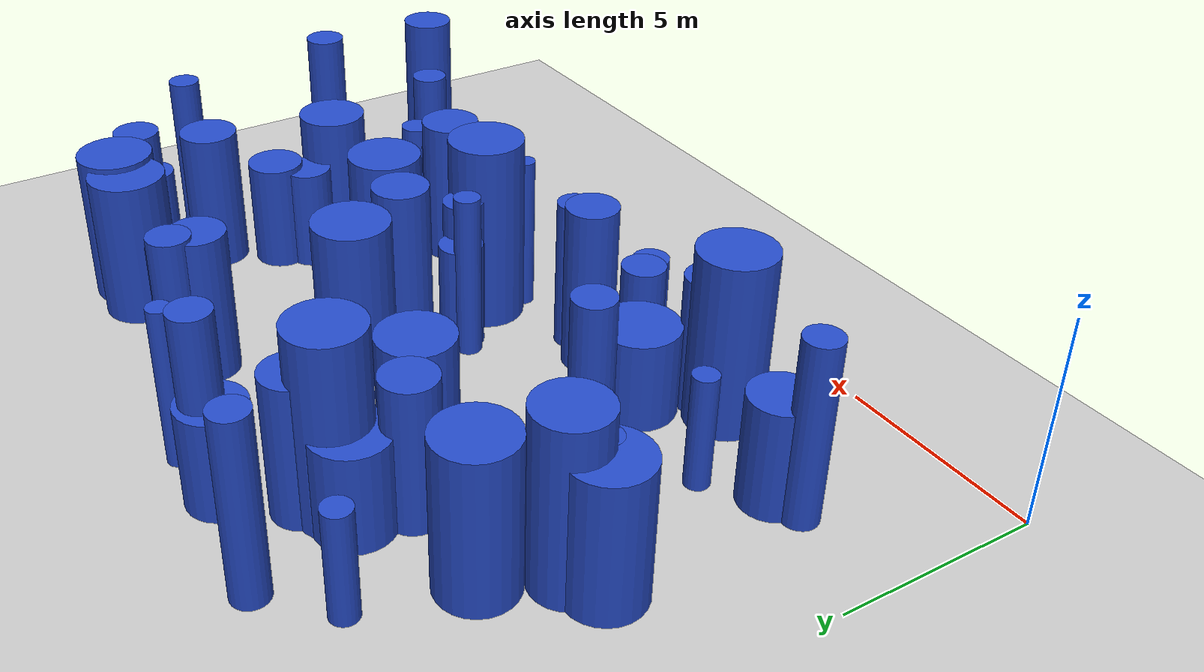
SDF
<sdf version="1.6">
 <world name="default">
  <model name="ground_plane">
   <static>1</static>
   <link name="link">
    <collision name="collision">
     <geometry><plane><normal>0 0 1</normal><size>100 100</size></plane></geometry>
     <surface><friction><ode><mu>100</mu><mu2>50</mu2></ode></friction></surface>
    </collision>
    <visual name="visual">
     <cast_shadows>0</cast_shadows>
     <geometry><plane><normal>0 0 1</normal><size>100 100</size></plane></geometry>
     <material>
      <script><uri>file://media/materials/scripts/gazebo.material</uri><name>Gazebo/Grey</name></script>
     </material>
    </visual>
   </link>
  </model>
  <model name="14">
   <static>0</static>
   <link name="link">
    <inertial>
     <mass>2</mass>
     <inertia><ixx>1.64079</ixx><ixy>0</ixy><ixz>0</ixz><iyy>1.64079</iyy><iyz>0</iyz><izz>0.150374</izz></inertia>
    </inertial>
    <collision name="collision">
     <geometry><cylinder><length>3.0649</length><radius>0.38778</radius></cylinder></geometry>
     <surface><contact><collide_without_contact>1</collide_without_contact></contact></surface>
    </collision>
    <visual name="visual">
     <geometry><cylinder><length>3.0649</length><radius>0.38778</radius></cylinder></geometry>
     <material>
      <script><uri>file://media/materials/scripts/gazebo.material</uri><name>Gazebo/Blue</name></script>
     </material>
    </visual>
    <gravity>0</gravity>
   </link>
   <pose>17.3165 4.85681 1.53245 0 -0 0</pose>
  </model>
  <model name="24">
   <static>0</static>
   <link name="link">
    <inertial>
     <mass>2</mass>
     <inertia><ixx>1.33099</ixx><ixy>0</ixy><ixz>0</ixz><iyy>1.33099</iyy><iyz>0</iyz><izz>0.36083</izz></inertia>
    </inertial>
    <collision name="collision">
     <geometry><cylinder><length>2.62744</length><radius>0.600691</radius></cylinder></geometry>
     <surface><contact><collide_without_contact>1</collide_without_contact></contact></surface>
    </collision>
    <visual name="visual">
     <geometry><cylinder><length>2.62744</length><radius>0.600691</radius></cylinder></geometry>
     <material>
      <script><uri>file://media/materials/scripts/gazebo.material</uri><name>Gazebo/Blue</name></script>
     </material>
    </visual>
    <gravity>0</gravity>
   </link>
   <pose>17.3457 8.06964 1.31372 0 -0 0</pose>
  </model>
  <model name="43">
   <static>0</static>
   <link name="link">
    <inertial>
     <mass>2</mass>
     <inertia><ixx>1.09648</ixx><ixy>0</ixy><ixz>0</ixz><iyy>1.09648</iyy><iyz>0</iyz><izz>0.193563</izz></inertia>
    </inertial>
    <collision name="collision">
     <geometry><cylinder><length>2.44912</length><radius>0.439957</radius></cylinder></geometry>
     <surface><contact><collide_without_contact>1</collide_without_contact></contact></surface>
    </collision>
    <visual name="visual">
     <geometry><cylinder><length>2.44912</length><radius>0.439957</radius></cylinder></geometry>
     <material>
      <script><uri>file://media/materials/scripts/gazebo.material</uri><name>Gazebo/Blue</name></script>
     </material>
    </visual>
    <gravity>0</gravity>
   </link>
   <pose>9.04417 13.8401 1.22456 0 -0 0</pose>
  </model>
  <model name="51">
   <static>0</static>
   <link name="link">
    <inertial>
     <mass>2</mass>
     <inertia><ixx>1.29974</ixx><ixy>0</ixy><ixz>0</ixz><iyy>1.29974</iyy><iyz>0</iyz><izz>0.9226</izz></inertia>
    </inertial>
    <collision name="collision">
     <geometry><cylinder><length>2.24292</length><radius>0.960521</radius></cylinder></geometry>
     <surface><contact><collide_without_contact>1</collide_without_contact></contact></surface>
    </collision>
    <visual name="visual">
     <geometry><cylinder><length>2.24292</length><radius>0.960521</radius></cylinder></geometry>
     <material>
      <script><uri>file://media/materials/scripts/gazebo.material</uri><name>Gazebo/Blue</name></script>
     </material>
    </visual>
    <gravity>0</gravity>
   </link>
   <pose>7.33392 4.56687 1.12146 0 -0 0</pose>
  </model>
  <model name="59">
   <static>0</static>
   <link name="link">
    <inertial>
     <mass>2</mass>
     <inertia><ixx>2.2693</ixx><ixy>0</ixy><ixz>0</ixz><iyy>2.2693</iyy><iyz>0</iyz><izz>0.485292</izz></inertia>
    </inertial>
    <collision name="collision">
     <geometry><cylinder><length>3.4871</length><radius>0.696629</radius></cylinder></geometry>
     <surface><contact><collide_without_contact>1</collide_without_contact></contact></surface>
    </collision>
    <visual name="visual">
     <geometry><cylinder><length>3.4871</length><radius>0.696629</radius></cylinder></geometry>
     <material>
      <script><uri>file://media/materials/scripts/gazebo.material</uri><name>Gazebo/Blue</name></script>
     </material>
    </visual>
    <gravity>0</gravity>
   </link>
   <pose>7.96873 12.509 1.74355 0 -0 0</pose>
  </model>
  <model name="65">
   <static>0</static>
   <link name="link">
    <inertial>
     <mass>2</mass>
     <inertia><ixx>1.80656</ixx><ixy>0</ixy><ixz>0</ixz><iyy>1.80656</iyy><iyz>0</iyz><izz>0.358625</izz></inertia>
    </inertial>
    <collision name="collision">
     <geometry><cylinder><length>3.12466</length><radius>0.598853</radius></cylinder></geometry>
     <surface><contact><collide_without_contact>1</collide_without_contact></contact></surface>
    </collision>
    <visual name="visual">
     <geometry><cylinder><length>3.12466</length><radius>0.598853</radius></cylinder></geometry>
     <material>
      <script><uri>file://media/materials/scripts/gazebo.material</uri><name>Gazebo/Blue</name></script>
     </material>
    </visual>
    <gravity>0</gravity>
   </link>
   <pose>20.6952 11.5157 1.56233 0 -0 0</pose>
  </model>
  <model name="71">
   <static>0</static>
   <link name="link">
    <inertial>
     <mass>2</mass>
     <inertia><ixx>2.9831</ixx><ixy>0</ixy><ixz>0</ixz><iyy>2.9831</iyy><iyz>0</iyz><izz>0.155993</izz></inertia>
    </inertial>
    <collision name="collision">
     <geometry><cylinder><length>4.175</length><radius>0.39496</radius></cylinder></geometry>
     <surface><contact><collide_without_contact>1</collide_without_contact></contact></surface>
    </collision>
    <visual name="visual">
     <geometry><cylinder><length>4.175</length><radius>0.39496</radius></cylinder></geometry>
     <material>
      <script><uri>file://media/materials/scripts/gazebo.material</uri><name>Gazebo/Blue</name></script>
     </material>
    </visual>
    <gravity>0</gravity>
   </link>
   <pose>20.8944 9.97858 2.0875 0 -0 0</pose>
  </model>
  <model name="73">
   <static>0</static>
   <link name="link">
    <inertial>
     <mass>2</mass>
     <inertia><ixx>1.32394</ixx><ixy>0</ixy><ixz>0</ixz><iyy>1.32394</iyy><iyz>0</iyz><izz>0.152551</izz></inertia>
    </inertial>
    <collision name="collision">
     <geometry><cylinder><length>2.73605</length><radius>0.390578</radius></cylinder></geometry>
     <surface><contact><collide_without_contact>1</collide_without_contact></contact></surface>
    </collision>
    <visual name="visual">
     <geometry><cylinder><length>2.73605</length><radius>0.390578</radius></cylinder></geometry>
     <material>
      <script><uri>file://media/materials/scripts/gazebo.material</uri><name>Gazebo/Blue</name></script>
     </material>
    </visual>
    <gravity>0</gravity>
   </link>
   <pose>13.9061 8.69924 1.36803 0 -0 0</pose>
  </model>
  <model name="76">
   <static>0</static>
   <link name="link">
    <inertial>
     <mass>2</mass>
     <inertia><ixx>2.40693</ixx><ixy>0</ixy><ixz>0</ixz><iyy>2.40693</iyy><iyz>0</iyz><izz>0.874203</izz></inertia>
    </inertial>
    <collision name="collision">
     <geometry><cylinder><length>3.43787</length><radius>0.934988</radius></cylinder></geometry>
     <surface><contact><collide_without_contact>1</collide_without_contact></contact></surface>
    </collision>
    <visual name="visual">
     <geometry><cylinder><length>3.43787</length><radius>0.934988</radius></cylinder></geometry>
     <material>
      <script><uri>file://media/materials/scripts/gazebo.material</uri><name>Gazebo/Blue</name></script>
     </material>
    </visual>
    <gravity>0</gravity>
   </link>
   <pose>15.5573 6.6876 1.71894 0 -0 0</pose>
  </model>
  <model name="81">
   <static>0</static>
   <link name="link">
    <inertial>
     <mass>2</mass>
     <inertia><ixx>1.97243</ixx><ixy>0</ixy><ixz>0</ixz><iyy>1.97243</iyy><iyz>0</iyz><izz>0.220158</izz></inertia>
    </inertial>
    <collision name="collision">
     <geometry><cylinder><length>3.34277</length><radius>0.46921</radius></cylinder></geometry>
     <surface><contact><collide_without_contact>1</collide_without_contact></contact></surface>
    </collision>
    <visual name="visual">
     <geometry><cylinder><length>3.34277</length><radius>0.46921</radius></cylinder></geometry>
     <material>
      <script><uri>file://media/materials/scripts/gazebo.material</uri><name>Gazebo/Blue</name></script>
     </material>
    </visual>
    <gravity>0</gravity>
   </link>
   <pose>19.5533 3.24828 1.67138 0 -0 0</pose>
  </model>
  <model name="101">
   <static>0</static>
   <link name="link">
    <inertial>
     <mass>2</mass>
     <inertia>
      <ixx>1.34979</ixx>
      <ixy>0</ixy>
      <ixz>0</ixz>
      <iyy>1.34979</iyy>
      <iyz>0</iyz>
      <izz>0.0901958</izz>
     </inertia>
    </inertial>
    <collision name="collision">
     <geometry><cylinder><length>2.79788</length><radius>0.300326</radius></cylinder></geometry>
     <surface><contact><collide_without_contact>1</collide_without_contact></contact></surface>
    </collision>
    <visual name="visual">
     <geometry><cylinder><length>2.79788</length><radius>0.300326</radius></cylinder></geometry>
     <material>
      <script><uri>file://media/materials/scripts/gazebo.material</uri><name>Gazebo/Blue</name></script>
     </material>
    </visual>
    <gravity>0</gravity>
   </link>
   <pose>4.49145 5.00371 1.39894 0 -0 0</pose>
  </model>
  <model name="105">
   <static>0</static>
   <link name="link">
    <inertial>
     <mass>2</mass>
     <inertia><ixx>3.37564</ixx><ixy>0</ixy><ixz>0</ixz><iyy>3.37564</iyy><iyz>0</iyz><izz>0.188264</izz></inertia>
    </inertial>
    <collision name="collision">
     <geometry><cylinder><length>4.43724</length><radius>0.433894</radius></cylinder></geometry>
     <surface><contact><collide_without_contact>1</collide_without_contact></contact></surface>
    </collision>
    <visual name="visual">
     <geometry><cylinder><length>4.43724</length><radius>0.433894</radius></cylinder></geometry>
     <material>
      <script><uri>file://media/materials/scripts/gazebo.material</uri><name>Gazebo/Blue</name></script>
     </material>
    </visual>
    <gravity>0</gravity>
   </link>
   <pose>6.19335 14.3822 2.21862 0 -0 0</pose>
  </model>
  <model name="121">
   <static>0</static>
   <link name="link">
    <inertial>
     <mass>2</mass>
     <inertia><ixx>4.19892</ixx><ixy>0</ixy><ixz>0</ixz><iyy>4.19892</iyy><iyz>0</iyz><izz>0.848081</izz></inertia>
    </inertial>
    <collision name="collision">
     <geometry><cylinder><length>4.75913</length><radius>0.920913</radius></cylinder></geometry>
     <surface><contact><collide_without_contact>1</collide_without_contact></contact></surface>
    </collision>
    <visual name="visual">
     <geometry><cylinder><length>4.75913</length><radius>0.920913</radius></cylinder></geometry>
     <material>
      <script><uri>file://media/materials/scripts/gazebo.material</uri><name>Gazebo/Blue</name></script>
     </material>
    </visual>
    <gravity>0</gravity>
   </link>
   <pose>12.6643 5.37511 2.37956 0 -0 0</pose>
  </model>
  <model name="124">
   <static>0</static>
   <link name="link">
    <inertial>
     <mass>2</mass>
     <inertia><ixx>1.34934</ixx><ixy>0</ixy><ixz>0</ixz><iyy>1.34934</iyy><iyz>0</iyz><izz>0.287212</izz></inertia>
    </inertial>
    <collision name="collision">
     <geometry><cylinder><length>2.68969</length><radius>0.535922</radius></cylinder></geometry>
     <surface><contact><collide_without_contact>1</collide_without_contact></contact></surface>
    </collision>
    <visual name="visual">
     <geometry><cylinder><length>2.68969</length><radius>0.535922</radius></cylinder></geometry>
     <material>
      <script><uri>file://media/materials/scripts/gazebo.material</uri><name>Gazebo/Blue</name></script>
     </material>
    </visual>
    <gravity>0</gravity>
   </link>
   <pose>11.7516 6.60939 1.34484 0 -0 0</pose>
  </model>
  <model name="131">
   <static>0</static>
   <link name="link">
    <inertial>
     <mass>2</mass>
     <inertia><ixx>4.03108</ixx><ixy>0</ixy><ixz>0</ixz><iyy>4.03108</iyy><iyz>0</iyz><izz>0.794484</izz></inertia>
    </inertial>
    <collision name="collision">
     <geometry><cylinder><length>4.66937</length><radius>0.891338</radius></cylinder></geometry>
     <surface><contact><collide_without_contact>1</collide_without_contact></contact></surface>
    </collision>
    <visual name="visual">
     <geometry><cylinder><length>4.66937</length><radius>0.891338</radius></cylinder></geometry>
     <material>
      <script><uri>file://media/materials/scripts/gazebo.material</uri><name>Gazebo/Blue</name></script>
     </material>
    </visual>
    <gravity>0</gravity>
   </link>
   <pose>7.50554 11.9354 2.33469 0 -0 0</pose>
  </model>
  <model name="141">
   <static>0</static>
   <link name="link">
    <inertial>
     <mass>2</mass>
     <inertia><ixx>3.06213</ixx><ixy>0</ixy><ixz>0</ixz><iyy>3.06213</iyy><iyz>0</iyz><izz>0.865013</izz></inertia>
    </inertial>
    <collision name="collision">
     <geometry><cylinder><length>3.97212</length><radius>0.930061</radius></cylinder></geometry>
     <surface><contact><collide_without_contact>1</collide_without_contact></contact></surface>
    </collision>
    <visual name="visual">
     <geometry><cylinder><length>3.97212</length><radius>0.930061</radius></cylinder></geometry>
     <material>
      <script><uri>file://media/materials/scripts/gazebo.material</uri><name>Gazebo/Blue</name></script>
     </material>
    </visual>
    <gravity>0</gravity>
   </link>
   <pose>11.9843 9.29499 1.98606 0 -0 0</pose>
  </model>
  <model name="148">
   <static>0</static>
   <link name="link">
    <inertial>
     <mass>2</mass>
     <inertia><ixx>2.53307</ixx><ixy>0</ixy><ixz>0</ixz><iyy>2.53307</iyy><iyz>0</iyz><izz>0.271163</izz></inertia>
    </inertial>
    <collision name="collision">
     <geometry><cylinder><length>3.79275</length><radius>0.520733</radius></cylinder></geometry>
     <surface><contact><collide_without_contact>1</collide_without_contact></contact></surface>
    </collision>
    <visual name="visual">
     <geometry><cylinder><length>3.79275</length><radius>0.520733</radius></cylinder></geometry>
     <material>
      <script><uri>file://media/materials/scripts/gazebo.material</uri><name>Gazebo/Blue</name></script>
     </material>
    </visual>
    <gravity>0</gravity>
   </link>
   <pose>13.728 12.9555 1.89637 0 -0 0</pose>
  </model>
  <model name="161">
   <static>0</static>
   <link name="link">
    <inertial>
     <mass>2</mass>
     <inertia><ixx>1.20429</ixx><ixy>0</ixy><ixz>0</ixz><iyy>1.20429</iyy><iyz>0</iyz><izz>0.28602</izz></inertia>
    </inertial>
    <collision name="collision">
     <geometry><cylinder><length>2.52343</length><radius>0.534809</radius></cylinder></geometry>
     <surface><contact><collide_without_contact>1</collide_without_contact></contact></surface>
    </collision>
    <visual name="visual">
     <geometry><cylinder><length>2.52343</length><radius>0.534809</radius></cylinder></geometry>
     <material>
      <script><uri>file://media/materials/scripts/gazebo.material</uri><name>Gazebo/Blue</name></script>
     </material>
    </visual>
    <gravity>0</gravity>
   </link>
   <pose>8.96403 3.3004 1.26171 0 -0 0</pose>
  </model>
  <model name="162">
   <static>0</static>
   <link name="link">
    <inertial>
     <mass>2</mass>
     <inertia><ixx>2.51589</ixx><ixy>0</ixy><ixz>0</ixz><iyy>2.51589</iyy><iyz>0</iyz><izz>0.473337</izz></inertia>
    </inertial>
    <collision name="collision">
     <geometry><cylinder><length>3.69802</length><radius>0.687995</radius></cylinder></geometry>
     <surface><contact><collide_without_contact>1</collide_without_contact></contact></surface>
    </collision>
    <visual name="visual">
     <geometry><cylinder><length>3.69802</length><radius>0.687995</radius></cylinder></geometry>
     <material>
      <script><uri>file://media/materials/scripts/gazebo.material</uri><name>Gazebo/Blue</name></script>
     </material>
    </visual>
    <gravity>0</gravity>
   </link>
   <pose>13.7713 12.2969 1.84901 0 -0 0</pose>
  </model>
  <model name="169">
   <static>0</static>
   <link name="link">
    <inertial>
     <mass>2</mass>
     <inertia><ixx>3.62148</ixx><ixy>0</ixy><ixz>0</ixz><iyy>3.62148</iyy><iyz>0</iyz><izz>0.427754</izz></inertia>
    </inertial>
    <collision name="collision">
     <geometry><cylinder><length>4.52169</length><radius>0.654029</radius></cylinder></geometry>
     <surface><contact><collide_without_contact>1</collide_without_contact></contact></surface>
    </collision>
    <visual name="visual">
     <geometry><cylinder><length>4.52169</length><radius>0.654029</radius></cylinder></geometry>
     <material>
      <script><uri>file://media/materials/scripts/gazebo.material</uri><name>Gazebo/Blue</name></script>
     </material>
    </visual>
    <gravity>0</gravity>
   </link>
   <pose>20.7021 2.66802 2.26084 0 -0 0</pose>
  </model>
  <model name="179">
   <static>0</static>
   <link name="link">
    <inertial>
     <mass>2</mass>
     <inertia><ixx>3.63462</ixx><ixy>0</ixy><ixz>0</ixz><iyy>3.63462</iyy><iyz>0</iyz><izz>0.851751</izz></inertia>
    </inertial>
    <collision name="collision">
     <geometry><cylinder><length>4.38776</length><radius>0.922903</radius></cylinder></geometry>
     <surface><contact><collide_without_contact>1</collide_without_contact></contact></surface>
    </collision>
    <visual name="visual">
     <geometry><cylinder><length>4.38776</length><radius>0.922903</radius></cylinder></geometry>
     <material>
      <script><uri>file://media/materials/scripts/gazebo.material</uri><name>Gazebo/Blue</name></script>
     </material>
    </visual>
    <gravity>0</gravity>
   </link>
   <pose>6.0278 3.09668 2.19388 0 -0 0</pose>
  </model>
  <model name="182">
   <static>0</static>
   <link name="link">
    <inertial>
     <mass>2</mass>
     <inertia><ixx>2.68017</ixx><ixy>0</ixy><ixz>0</ixz><iyy>2.68017</iyy><iyz>0</iyz><izz>0.716184</izz></inertia>
    </inertial>
    <collision name="collision">
     <geometry><cylinder><length>3.73262</length><radius>0.846277</radius></cylinder></geometry>
     <surface><contact><collide_without_contact>1</collide_without_contact></contact></surface>
    </collision>
    <visual name="visual">
     <geometry><cylinder><length>3.73262</length><radius>0.846277</radius></cylinder></geometry>
     <material>
      <script><uri>file://media/materials/scripts/gazebo.material</uri><name>Gazebo/Blue</name></script>
     </material>
    </visual>
    <gravity>0</gravity>
   </link>
   <pose>17.889 7.04616 1.86631 0 -0 0</pose>
  </model>
  <model name="184">
   <static>0</static>
   <link name="link">
    <inertial>
     <mass>2</mass>
     <inertia><ixx>1.36803</ixx><ixy>0</ixy><ixz>0</ixz><iyy>1.36803</iyy><iyz>0</iyz><izz>0.116416</izz></inertia>
    </inertial>
    <collision name="collision">
     <geometry><cylinder><length>2.80338</length><radius>0.341198</radius></cylinder></geometry>
     <surface><contact><collide_without_contact>1</collide_without_contact></contact></surface>
    </collision>
    <visual name="visual">
     <geometry><cylinder><length>2.80338</length><radius>0.341198</radius></cylinder></geometry>
     <material>
      <script><uri>file://media/materials/scripts/gazebo.material</uri><name>Gazebo/Blue</name></script>
     </material>
    </visual>
    <gravity>0</gravity>
   </link>
   <pose>8.4751 11.947 1.40169 0 -0 0</pose>
  </model>
  <model name="185">
   <static>0</static>
   <link name="link">
    <inertial>
     <mass>2</mass>
     <inertia><ixx>1.95386</ixx><ixy>0</ixy><ixz>0</ixz><iyy>1.95386</iyy><iyz>0</iyz><izz>0.128086</izz></inertia>
    </inertial>
    <collision name="collision">
     <geometry><cylinder><length>3.36733</length><radius>0.357891</radius></cylinder></geometry>
     <surface><contact><collide_without_contact>1</collide_without_contact></contact></surface>
    </collision>
    <visual name="visual">
     <geometry><cylinder><length>3.36733</length><radius>0.357891</radius></cylinder></geometry>
     <material>
      <script><uri>file://media/materials/scripts/gazebo.material</uri><name>Gazebo/Blue</name></script>
     </material>
    </visual>
    <gravity>0</gravity>
   </link>
   <pose>3.30288 8.27583 1.68366 0 -0 0</pose>
  </model>
  <model name="191">
   <static>0</static>
   <link name="link">
    <inertial>
     <mass>2</mass>
     <inertia><ixx>3.75067</ixx><ixy>0</ixy><ixz>0</ixz><iyy>3.75067</iyy><iyz>0</iyz><izz>0.232087</izz></inertia>
    </inertial>
    <collision name="collision">
     <geometry><cylinder><length>4.66988</length><radius>0.481754</radius></cylinder></geometry>
     <surface><contact><collide_without_contact>1</collide_without_contact></contact></surface>
    </collision>
    <visual name="visual">
     <geometry><cylinder><length>4.66988</length><radius>0.481754</radius></cylinder></geometry>
     <material>
      <script><uri>file://media/materials/scripts/gazebo.material</uri><name>Gazebo/Blue</name></script>
     </material>
    </visual>
    <gravity>0</gravity>
   </link>
   <pose>9.25658 13.9749 2.33494 0 -0 0</pose>
  </model>
  <model name="196">
   <static>0</static>
   <link name="link">
    <inertial>
     <mass>2</mass>
     <inertia><ixx>2.49484</ixx><ixy>0</ixy><ixz>0</ixz><iyy>2.49484</iyy><iyz>0</iyz><izz>0.187798</izz></inertia>
    </inertial>
    <collision name="collision">
     <geometry><cylinder><length>3.79547</length><radius>0.433356</radius></cylinder></geometry>
     <surface><contact><collide_without_contact>1</collide_without_contact></contact></surface>
    </collision>
    <visual name="visual">
     <geometry><cylinder><length>3.79547</length><radius>0.433356</radius></cylinder></geometry>
     <material>
      <script><uri>file://media/materials/scripts/gazebo.material</uri><name>Gazebo/Blue</name></script>
     </material>
    </visual>
    <gravity>0</gravity>
   </link>
   <pose>10.3997 4.29556 1.89774 0 -0 0</pose>
  </model>
  <model name="208">
   <static>0</static>
   <link name="link">
    <inertial>
     <mass>2</mass>
     <inertia><ixx>2.09139</ixx><ixy>0</ixy><ixz>0</ixz><iyy>2.09139</iyy><iyz>0</iyz><izz>0.317675</izz></inertia>
    </inertial>
    <collision name="collision">
     <geometry><cylinder><length>3.40519</length><radius>0.563626</radius></cylinder></geometry>
     <surface><contact><collide_without_contact>1</collide_without_contact></contact></surface>
    </collision>
    <visual name="visual">
     <geometry><cylinder><length>3.40519</length><radius>0.563626</radius></cylinder></geometry>
     <material>
      <script><uri>file://media/materials/scripts/gazebo.material</uri><name>Gazebo/Blue</name></script>
     </material>
    </visual>
    <gravity>0</gravity>
   </link>
   <pose>6.72108 3.21492 1.70259 0 -0 0</pose>
  </model>
  <model name="212">
   <static>0</static>
   <link name="link">
    <inertial>
     <mass>2</mass>
     <inertia><ixx>1.88161</ixx><ixy>0</ixy><ixz>0</ixz><iyy>1.88161</iyy><iyz>0</iyz><izz>0.472566</izz></inertia>
    </inertial>
    <collision name="collision">
     <geometry><cylinder><length>3.14197</length><radius>0.687434</radius></cylinder></geometry>
     <surface><contact><collide_without_contact>1</collide_without_contact></contact></surface>
    </collision>
    <visual name="visual">
     <geometry><cylinder><length>3.14197</length><radius>0.687434</radius></cylinder></geometry>
     <material>
      <script><uri>file://media/materials/scripts/gazebo.material</uri><name>Gazebo/Blue</name></script>
     </material>
    </visual>
    <gravity>0</gravity>
   </link>
   <pose>9.0333 11.5159 1.57098 0 -0 0</pose>
  </model>
  <model name="226">
   <static>0</static>
   <link name="link">
    <inertial>
     <mass>2</mass>
     <inertia><ixx>2.73322</ixx><ixy>0</ixy><ixz>0</ixz><iyy>2.73322</iyy><iyz>0</iyz><izz>0.870764</izz></inertia>
    </inertial>
    <collision name="collision">
     <geometry><cylinder><length>3.71309</length><radius>0.933148</radius></cylinder></geometry>
     <surface><contact><collide_without_contact>1</collide_without_contact></contact></surface>
    </collision>
    <visual name="visual">
     <geometry><cylinder><length>3.71309</length><radius>0.933148</radius></cylinder></geometry>
     <material>
      <script><uri>file://media/materials/scripts/gazebo.material</uri><name>Gazebo/Blue</name></script>
     </material>
    </visual>
    <gravity>0</gravity>
   </link>
   <pose>17.2676 12.7973 1.85655 0 -0 0</pose>
  </model>
  <model name="234">
   <static>0</static>
   <link name="link">
    <inertial>
     <mass>2</mass>
     <inertia><ixx>2.17715</ixx><ixy>0</ixy><ixz>0</ixz><iyy>2.17715</iyy><iyz>0</iyz><izz>0.251481</izz></inertia>
    </inertial>
    <collision name="collision">
     <geometry><cylinder><length>3.50834</length><radius>0.501479</radius></cylinder></geometry>
     <surface><contact><collide_without_contact>1</collide_without_contact></contact></surface>
    </collision>
    <visual name="visual">
     <geometry><cylinder><length>3.50834</length><radius>0.501479</radius></cylinder></geometry>
     <material>
      <script><uri>file://media/materials/scripts/gazebo.material</uri><name>Gazebo/Blue</name></script>
     </material>
    </visual>
    <gravity>0</gravity>
   </link>
   <pose>12.2579 6.24214 1.75417 0 -0 0</pose>
  </model>
  <model name="237">
   <static>0</static>
   <link name="link">
    <inertial>
     <mass>2</mass>
     <inertia><ixx>2.88834</ixx><ixy>0</ixy><ixz>0</ixz><iyy>2.88834</iyy><iyz>0</iyz><izz>0.848558</izz></inertia>
    </inertial>
    <collision name="collision">
     <geometry><cylinder><length>3.84504</length><radius>0.921172</radius></cylinder></geometry>
     <surface><contact><collide_without_contact>1</collide_without_contact></contact></surface>
    </collision>
    <visual name="visual">
     <geometry><cylinder><length>3.84504</length><radius>0.921172</radius></cylinder></geometry>
     <material>
      <script><uri>file://media/materials/scripts/gazebo.material</uri><name>Gazebo/Blue</name></script>
     </material>
    </visual>
    <gravity>0</gravity>
   </link>
   <pose>18.2669 12.7496 1.92252 0 -0 0</pose>
  </model>
  <model name="275">
   <static>0</static>
   <link name="link">
    <inertial>
     <mass>2</mass>
     <inertia><ixx>2.17031</ixx><ixy>0</ixy><ixz>0</ixz><iyy>2.17031</iyy><iyz>0</iyz><izz>0.274594</izz></inertia>
    </inertial>
    <collision name="collision">
     <geometry><cylinder><length>3.49257</length><radius>0.524018</radius></cylinder></geometry>
     <surface><contact><collide_without_contact>1</collide_without_contact></contact></surface>
    </collision>
    <visual name="visual">
     <geometry><cylinder><length>3.49257</length><radius>0.524018</radius></cylinder></geometry>
     <material>
      <script><uri>file://media/materials/scripts/gazebo.material</uri><name>Gazebo/Blue</name></script>
     </material>
    </visual>
    <gravity>0</gravity>
   </link>
   <pose>7.17294 5.93236 1.74629 0 -0 0</pose>
  </model>
  <model name="280">
   <static>0</static>
   <link name="link">
    <inertial>
     <mass>2</mass>
     <inertia><ixx>2.63852</ixx><ixy>0</ixy><ixz>0</ixz><iyy>2.63852</iyy><iyz>0</iyz><izz>0.06846</izz></inertia>
    </inertial>
    <collision name="collision">
     <geometry><cylinder><length>3.95294</length><radius>0.261649</radius></cylinder></geometry>
     <surface><contact><collide_without_contact>1</collide_without_contact></contact></surface>
    </collision>
    <visual name="visual">
     <geometry><cylinder><length>3.95294</length><radius>0.261649</radius></cylinder></geometry>
     <material>
      <script><uri>file://media/materials/scripts/gazebo.material</uri><name>Gazebo/Blue</name></script>
     </material>
    </visual>
    <gravity>0</gravity>
   </link>
   <pose>12.5486 4.36756 1.97647 0 -0 0</pose>
  </model>
  <model name="285">
   <static>0</static>
   <link name="link">
    <inertial>
     <mass>2</mass>
     <inertia><ixx>2.31051</ixx><ixy>0</ixy><ixz>0</ixz><iyy>2.31051</iyy><iyz>0</iyz><izz>0.844961</izz></inertia>
    </inertial>
    <collision name="collision">
     <geometry><cylinder><length>3.36574</length><radius>0.919217</radius></cylinder></geometry>
     <surface><contact><collide_without_contact>1</collide_without_contact></contact></surface>
    </collision>
    <visual name="visual">
     <geometry><cylinder><length>3.36574</length><radius>0.919217</radius></cylinder></geometry>
     <material>
      <script><uri>file://media/materials/scripts/gazebo.material</uri><name>Gazebo/Blue</name></script>
     </material>
    </visual>
    <gravity>0</gravity>
   </link>
   <pose>2.78345 8.5435 1.68287 0 -0 0</pose>
  </model>
  <model name="302">
   <static>0</static>
   <link name="link">
    <inertial>
     <mass>2</mass>
     <inertia><ixx>1.36983</ixx><ixy>0</ixy><ixz>0</ixz><iyy>1.36983</iyy><iyz>0</iyz><izz>0.837459</izz></inertia>
    </inertial>
    <collision name="collision">
     <geometry><cylinder><length>2.38886</length><radius>0.915128</radius></cylinder></geometry>
     <surface><contact><collide_without_contact>1</collide_without_contact></contact></surface>
    </collision>
    <visual name="visual">
     <geometry><cylinder><length>2.38886</length><radius>0.915128</radius></cylinder></geometry>
     <material>
      <script><uri>file://media/materials/scripts/gazebo.material</uri><name>Gazebo/Blue</name></script>
     </material>
    </visual>
    <gravity>0</gravity>
   </link>
   <pose>6.96774 11.7871 1.19443 0 -0 0</pose>
  </model>
  <model name="313">
   <static>0</static>
   <link name="link">
    <inertial>
     <mass>2</mass>
     <inertia><ixx>4.24822</ixx><ixy>0</ixy><ixz>0</ixz><iyy>4.24822</iyy><iyz>0</iyz><izz>0.237559</izz></inertia>
    </inertial>
    <collision name="collision">
     <geometry><cylinder><length>4.97762</length><radius>0.487401</radius></cylinder></geometry>
     <surface><contact><collide_without_contact>1</collide_without_contact></contact></surface>
    </collision>
    <visual name="visual">
     <geometry><cylinder><length>4.97762</length><radius>0.487401</radius></cylinder></geometry>
     <material>
      <script><uri>file://media/materials/scripts/gazebo.material</uri><name>Gazebo/Blue</name></script>
     </material>
    </visual>
    <gravity>0</gravity>
   </link>
   <pose>19.9106 6.23171 2.48881 0 -0 0</pose>
  </model>
  <model name="321">
   <static>0</static>
   <link name="link">
    <inertial>
     <mass>2</mass>
     <inertia><ixx>1.21798</ixx><ixy>0</ixy><ixz>0</ixz><iyy>1.21798</iyy><iyz>0</iyz><izz>0.108455</izz></inertia>
    </inertial>
    <collision name="collision">
     <geometry><cylinder><length>2.64244</length><radius>0.329325</radius></cylinder></geometry>
     <surface><contact><collide_without_contact>1</collide_without_contact></contact></surface>
    </collision>
    <visual name="visual">
     <geometry><cylinder><length>2.64244</length><radius>0.329325</radius></cylinder></geometry>
     <material>
      <script><uri>file://media/materials/scripts/gazebo.material</uri><name>Gazebo/Blue</name></script>
     </material>
    </visual>
    <gravity>0</gravity>
   </link>
   <pose>4.80837 13.0571 1.32122 0 -0 0</pose>
  </model>
  <model name="330">
   <static>0</static>
   <link name="link">
    <inertial>
     <mass>2</mass>
     <inertia><ixx>2.46089</ixx><ixy>0</ixy><ixz>0</ixz><iyy>2.46089</iyy><iyz>0</iyz><izz>0.528175</izz></inertia>
    </inertial>
    <collision name="collision">
     <geometry><cylinder><length>3.63054</length><radius>0.726757</radius></cylinder></geometry>
     <surface><contact><collide_without_contact>1</collide_without_contact></contact></surface>
    </collision>
    <visual name="visual">
     <geometry><cylinder><length>3.63054</length><radius>0.726757</radius></cylinder></geometry>
     <material>
      <script><uri>file://media/materials/scripts/gazebo.material</uri><name>Gazebo/Blue</name></script>
     </material>
    </visual>
    <gravity>0</gravity>
   </link>
   <pose>18.699 10.183 1.81527 0 -0 0</pose>
  </model>
  <model name="333">
   <static>0</static>
   <link name="link">
    <inertial>
     <mass>2</mass>
     <inertia><ixx>1.49671</ixx><ixy>0</ixy><ixz>0</ixz><iyy>1.49671</iyy><iyz>0</iyz><izz>0.187762</izz></inertia>
    </inertial>
    <collision name="collision">
     <geometry><cylinder><length>2.9012</length><radius>0.433315</radius></cylinder></geometry>
     <surface><contact><collide_without_contact>1</collide_without_contact></contact></surface>
    </collision>
    <visual name="visual">
     <geometry><cylinder><length>2.9012</length><radius>0.433315</radius></cylinder></geometry>
     <material>
      <script><uri>file://media/materials/scripts/gazebo.material</uri><name>Gazebo/Blue</name></script>
     </material>
    </visual>
    <gravity>0</gravity>
   </link>
   <pose>15.1868 11.8509 1.4506 0 -0 0</pose>
  </model>
  <model name="341">
   <static>0</static>
   <link name="link">
    <inertial>
     <mass>2</mass>
     <inertia><ixx>1.32672</ixx><ixy>0</ixy><ixz>0</ixz><iyy>1.32672</iyy><iyz>0</iyz><izz>0.627442</izz></inertia>
    </inertial>
    <collision name="collision">
     <geometry><cylinder><length>2.46536</length><radius>0.792113</radius></cylinder></geometry>
     <surface><contact><collide_without_contact>1</collide_without_contact></contact></surface>
    </collision>
    <visual name="visual">
     <geometry><cylinder><length>2.46536</length><radius>0.792113</radius></cylinder></geometry>
     <material>
      <script><uri>file://media/materials/scripts/gazebo.material</uri><name>Gazebo/Blue</name></script>
     </material>
    </visual>
    <gravity>0</gravity>
   </link>
   <pose>9.13472 13.823 1.23268 0 -0 0</pose>
  </model>
  <model name="343">
   <static>0</static>
   <link name="link">
    <inertial>
     <mass>2</mass>
     <inertia><ixx>1.21137</ixx><ixy>0</ixy><ixz>0</ixz><iyy>1.21137</iyy><iyz>0</iyz><izz>0.144562</izz></inertia>
    </inertial>
    <collision name="collision">
     <geometry><cylinder><length>2.61429</length><radius>0.380214</radius></cylinder></geometry>
     <surface><contact><collide_without_contact>1</collide_without_contact></contact></surface>
    </collision>
    <visual name="visual">
     <geometry><cylinder><length>2.61429</length><radius>0.380214</radius></cylinder></geometry>
     <material>
      <script><uri>file://media/materials/scripts/gazebo.material</uri><name>Gazebo/Blue</name></script>
     </material>
    </visual>
    <gravity>0</gravity>
   </link>
   <pose>16.9122 4.52551 1.30715 0 -0 0</pose>
  </model>
  <model name="348">
   <static>0</static>
   <link name="link">
    <inertial>
     <mass>2</mass>
     <inertia><ixx>0.7985</ixx><ixy>0</ixy><ixz>0</ixz><iyy>0.7985</iyy><iyz>0</iyz><izz>0.206274</izz></inertia>
    </inertial>
    <collision name="collision">
     <geometry><cylinder><length>2.04259</length><radius>0.454173</radius></cylinder></geometry>
     <surface><contact><collide_without_contact>1</collide_without_contact></contact></surface>
    </collision>
    <visual name="visual">
     <geometry><cylinder><length>2.04259</length><radius>0.454173</radius></cylinder></geometry>
     <material>
      <script><uri>file://media/materials/scripts/gazebo.material</uri><name>Gazebo/Blue</name></script>
     </material>
    </visual>
    <gravity>0</gravity>
   </link>
   <pose>9.78855 2.46496 1.0213 0 -0 0</pose>
  </model>
  <model name="354">
   <static>0</static>
   <link name="link">
    <inertial>
     <mass>2</mass>
     <inertia>
      <ixx>0.886092</ixx>
      <ixy>0</ixy>
      <ixz>0</ixz>
      <iyy>0.886092</iyy>
      <iyz>0</iyz>
      <izz>0.327359</izz>
     </inertia>
    </inertial>
    <collision name="collision">
     <geometry><cylinder><length>2.08194</length><radius>0.572153</radius></cylinder></geometry>
     <surface><contact><collide_without_contact>1</collide_without_contact></contact></surface>
    </collision>
    <visual name="visual">
     <geometry><cylinder><length>2.08194</length><radius>0.572153</radius></cylinder></geometry>
     <material>
      <script><uri>file://media/materials/scripts/gazebo.material</uri><name>Gazebo/Blue</name></script>
     </material>
    </visual>
    <gravity>0</gravity>
   </link>
   <pose>20.2673 11.3421 1.04097 0 -0 0</pose>
  </model>
  <model name="364">
   <static>0</static>
   <link name="link">
    <inertial>
     <mass>2</mass>
     <inertia><ixx>2.62333</ixx><ixy>0</ixy><ixz>0</ixz><iyy>2.62333</iyy><iyz>0</iyz><izz>0.536949</izz></inertia>
    </inertial>
    <collision name="collision">
     <geometry><cylinder><length>3.75887</length><radius>0.732768</radius></cylinder></geometry>
     <surface><contact><collide_without_contact>1</collide_without_contact></contact></surface>
    </collision>
    <visual name="visual">
     <geometry><cylinder><length>3.75887</length><radius>0.732768</radius></cylinder></geometry>
     <material>
      <script><uri>file://media/materials/scripts/gazebo.material</uri><name>Gazebo/Blue</name></script>
     </material>
    </visual>
    <gravity>0</gravity>
   </link>
   <pose>15.8183 4.63027 1.87944 0 -0 0</pose>
  </model>
  <model name="381">
   <static>0</static>
   <link name="link">
    <inertial>
     <mass>2</mass>
     <inertia><ixx>1.53205</ixx><ixy>0</ixy><ixz>0</ixz><iyy>1.53205</iyy><iyz>0</iyz><izz>0.871939</izz></inertia>
    </inertial>
    <collision name="collision">
     <geometry><cylinder><length>2.56447</length><radius>0.933777</radius></cylinder></geometry>
     <surface><contact><collide_without_contact>1</collide_without_contact></contact></surface>
    </collision>
    <visual name="visual">
     <geometry><cylinder><length>2.56447</length><radius>0.933777</radius></cylinder></geometry>
     <material>
      <script><uri>file://media/materials/scripts/gazebo.material</uri><name>Gazebo/Blue</name></script>
     </material>
    </visual>
    <gravity>0</gravity>
   </link>
   <pose>9.09352 9.2151 1.28223 0 -0 0</pose>
  </model>
  <model name="387">
   <static>0</static>
   <link name="link">
    <inertial>
     <mass>2</mass>
     <inertia><ixx>2.91457</ixx><ixy>0</ixy><ixz>0</ixz><iyy>2.91457</iyy><iyz>0</iyz><izz>0.100752</izz></inertia>
    </inertial>
    <collision name="collision">
     <geometry><cylinder><length>4.1455</length><radius>0.317415</radius></cylinder></geometry>
     <surface><contact><collide_without_contact>1</collide_without_contact></contact></surface>
    </collision>
    <visual name="visual">
     <geometry><cylinder><length>4.1455</length><radius>0.317415</radius></cylinder></geometry>
     <material>
      <script><uri>file://media/materials/scripts/gazebo.material</uri><name>Gazebo/Blue</name></script>
     </material>
    </visual>
    <gravity>0</gravity>
   </link>
   <pose>11.3311 6.6609 2.07275 0 -0 0</pose>
  </model>
  <model name="393">
   <static>0</static>
   <link name="link">
    <inertial>
     <mass>2</mass>
     <inertia><ixx>3.35701</ixx><ixy>0</ixy><ixz>0</ixz><iyy>3.35701</iyy><iyz>0</iyz><izz>0.714882</izz></inertia>
    </inertial>
    <collision name="collision">
     <geometry><cylinder><length>4.24233</length><radius>0.845507</radius></cylinder></geometry>
     <surface><contact><collide_without_contact>1</collide_without_contact></contact></surface>
    </collision>
    <visual name="visual">
     <geometry><cylinder><length>4.24233</length><radius>0.845507</radius></cylinder></geometry>
     <material>
      <script><uri>file://media/materials/scripts/gazebo.material</uri><name>Gazebo/Blue</name></script>
     </material>
    </visual>
    <gravity>0</gravity>
   </link>
   <pose>3.42447 8.96495 2.12117 0 -0 0</pose>
  </model>
  <model name="397">
   <static>0</static>
   <link name="link">
    <inertial>
     <mass>2</mass>
     <inertia><ixx>1.50881</ixx><ixy>0</ixy><ixz>0</ixz><iyy>1.50881</iyy><iyz>0</iyz><izz>0.602988</izz></inertia>
    </inertial>
    <collision name="collision">
     <geometry><cylinder><length>2.69145</length><radius>0.776523</radius></cylinder></geometry>
     <surface><contact><collide_without_contact>1</collide_without_contact></contact></surface>
    </collision>
    <visual name="visual">
     <geometry><cylinder><length>2.69145</length><radius>0.776523</radius></cylinder></geometry>
     <material>
      <script><uri>file://media/materials/scripts/gazebo.material</uri><name>Gazebo/Blue</name></script>
     </material>
    </visual>
    <gravity>0</gravity>
   </link>
   <pose>3.28682 3.98152 1.34572 0 -0 0</pose>
  </model>
  <model name="415">
   <static>0</static>
   <link name="link">
    <inertial>
     <mass>2</mass>
     <inertia><ixx>2.70681</ixx><ixy>0</ixy><ixz>0</ixz><iyy>2.70681</iyy><iyz>0</iyz><izz>0.843833</izz></inertia>
    </inertial>
    <collision name="collision">
     <geometry><cylinder><length>3.70262</length><radius>0.918604</radius></cylinder></geometry>
     <surface><contact><collide_without_contact>1</collide_without_contact></contact></surface>
    </collision>
    <visual name="visual">
     <geometry><cylinder><length>3.70262</length><radius>0.918604</radius></cylinder></geometry>
     <material>
      <script><uri>file://media/materials/scripts/gazebo.material</uri><name>Gazebo/Blue</name></script>
     </material>
    </visual>
    <gravity>0</gravity>
   </link>
   <pose>4.21608 10.5188 1.85131 0 -0 0</pose>
  </model>
  <model name="448">
   <static>0</static>
   <link name="link">
    <inertial>
     <mass>2</mass>
     <inertia><ixx>3.41864</ixx><ixy>0</ixy><ixz>0</ixz><iyy>3.41864</iyy><iyz>0</iyz><izz>0.190183</izz></inertia>
    </inertial>
    <collision name="collision">
     <geometry><cylinder><length>4.46557</length><radius>0.436099</radius></cylinder></geometry>
     <surface><contact><collide_without_contact>1</collide_without_contact></contact></surface>
    </collision>
    <visual name="visual">
     <geometry><cylinder><length>4.46557</length><radius>0.436099</radius></cylinder></geometry>
     <material>
      <script><uri>file://media/materials/scripts/gazebo.material</uri><name>Gazebo/Blue</name></script>
     </material>
    </visual>
    <gravity>0</gravity>
   </link>
   <pose>2.53594 3.87609 2.23278 0 -0 0</pose>
  </model>
  <model name="475">
   <static>0</static>
   <link name="link">
    <inertial>
     <mass>2</mass>
     <inertia><ixx>1.59041</ixx><ixy>0</ixy><ixz>0</ixz><iyy>1.59041</iyy><iyz>0</iyz><izz>0.221679</izz></inertia>
    </inertial>
    <collision name="collision">
     <geometry><cylinder><length>2.9795</length><radius>0.470828</radius></cylinder></geometry>
     <surface><contact><collide_without_contact>1</collide_without_contact></contact></surface>
    </collision>
    <visual name="visual">
     <geometry><cylinder><length>2.9795</length><radius>0.470828</radius></cylinder></geometry>
     <material>
      <script><uri>file://media/materials/scripts/gazebo.material</uri><name>Gazebo/Blue</name></script>
     </material>
    </visual>
    <gravity>0</gravity>
   </link>
   <pose>14.8279 12.7459 1.48975 0 -0 0</pose>
  </model>
  <model name="480">
   <static>0</static>
   <link name="link">
    <inertial>
     <mass>2</mass>
     <inertia><ixx>3.09443</ixx><ixy>0</ixy><ixz>0</ixz><iyy>3.09443</iyy><iyz>0</iyz><izz>0.395531</izz></inertia>
    </inertial>
    <collision name="collision">
     <geometry><cylinder><length>4.16893</length><radius>0.628912</radius></cylinder></geometry>
     <surface><contact><collide_without_contact>1</collide_without_contact></contact></surface>
    </collision>
    <visual name="visual">
     <geometry><cylinder><length>4.16893</length><radius>0.628912</radius></cylinder></geometry>
     <material>
      <script><uri>file://media/materials/scripts/gazebo.material</uri><name>Gazebo/Blue</name></script>
     </material>
    </visual>
    <gravity>0</gravity>
   </link>
   <pose>9.48316 4.44899 2.08446 0 -0 0</pose>
  </model>
  <model name="481">
   <static>0</static>
   <link name="link">
    <inertial>
     <mass>2</mass>
     <inertia><ixx>3.12061</ixx><ixy>0</ixy><ixz>0</ixz><iyy>3.12061</iyy><iyz>0</iyz><izz>0.473592</izz></inertia>
    </inertial>
    <collision name="collision">
     <geometry><cylinder><length>4.15967</length><radius>0.688181</radius></cylinder></geometry>
     <surface><contact><collide_without_contact>1</collide_without_contact></contact></surface>
    </collision>
    <visual name="visual">
     <geometry><cylinder><length>4.15967</length><radius>0.688181</radius></cylinder></geometry>
     <material>
      <script><uri>file://media/materials/scripts/gazebo.material</uri><name>Gazebo/Blue</name></script>
     </material>
    </visual>
    <gravity>0</gravity>
   </link>
   <pose>12.5854 7.72852 2.07983 0 -0 0</pose>
  </model>
  <model name="485">
   <static>0</static>
   <link name="link">
    <inertial>
     <mass>2</mass>
     <inertia><ixx>2.60588</ixx><ixy>0</ixy><ixz>0</ixz><iyy>2.60588</iyy><iyz>0</iyz><izz>0.073564</izz></inertia>
    </inertial>
    <collision name="collision">
     <geometry><cylinder><length>3.92614</length><radius>0.271227</radius></cylinder></geometry>
     <surface><contact><collide_without_contact>1</collide_without_contact></contact></surface>
    </collision>
    <visual name="visual">
     <geometry><cylinder><length>3.92614</length><radius>0.271227</radius></cylinder></geometry>
     <material>
      <script><uri>file://media/materials/scripts/gazebo.material</uri><name>Gazebo/Blue</name></script>
     </material>
    </visual>
    <gravity>0</gravity>
   </link>
   <pose>10.81 14.1601 1.96307 0 -0 0</pose>
  </model>
  <model name="489">
   <static>0</static>
   <link name="link">
    <inertial>
     <mass>2</mass>
     <inertia><ixx>1.525</ixx><ixy>0</ixy><ixz>0</ixz><iyy>1.525</iyy><iyz>0</iyz><izz>0.488864</izz></inertia>
    </inertial>
    <collision name="collision">
     <geometry><cylinder><length>2.7719</length><radius>0.699188</radius></cylinder></geometry>
     <surface><contact><collide_without_contact>1</collide_without_contact></contact></surface>
    </collision>
    <visual name="visual">
     <geometry><cylinder><length>2.7719</length><radius>0.699188</radius></cylinder></geometry>
     <material>
      <script><uri>file://media/materials/scripts/gazebo.material</uri><name>Gazebo/Blue</name></script>
     </material>
    </visual>
    <gravity>0</gravity>
   </link>
   <pose>17.8222 8.75713 1.38595 0 -0 0</pose>
  </model>
  <model name="494">
   <static>0</static>
   <link name="link">
    <inertial>
     <mass>2</mass>
     <inertia><ixx>2.28697</ixx><ixy>0</ixy><ixz>0</ixz><iyy>2.28697</iyy><iyz>0</iyz><izz>0.409275</izz></inertia>
    </inertial>
    <collision name="collision">
     <geometry><cylinder><length>3.53468</length><radius>0.639746</radius></cylinder></geometry>
     <surface><contact><collide_without_contact>1</collide_without_contact></contact></surface>
    </collision>
    <visual name="visual">
     <geometry><cylinder><length>3.53468</length><radius>0.639746</radius></cylinder></geometry>
     <material>
      <script><uri>file://media/materials/scripts/gazebo.material</uri><name>Gazebo/Blue</name></script>
     </material>
    </visual>
    <gravity>0</gravity>
   </link>
   <pose>6.61344 10.6315 1.76734 0 -0 0</pose>
  </model>
 </world>
</sdf>
